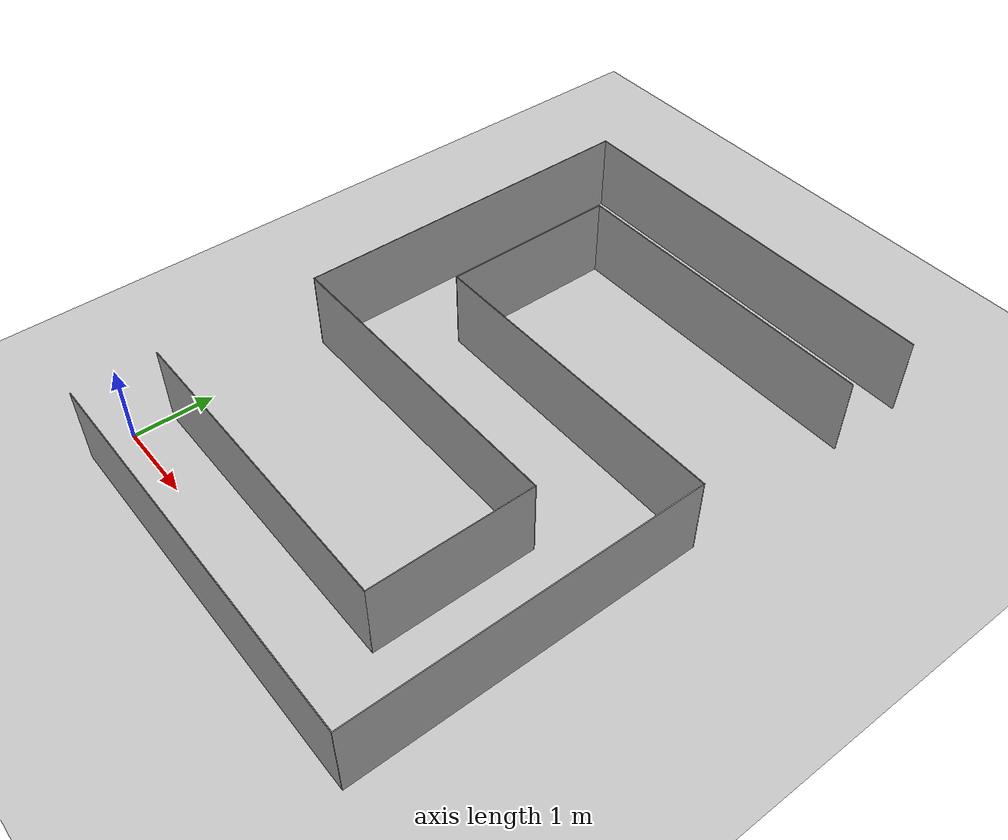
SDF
<sdf version="1.7">
 <world name="default">
  <light name="sun" type="directional">
   <pose>0 0 10 0 -0 0</pose>
   <diffuse>0.8 0.8 0.8 1</diffuse>
   <specular>0.2 0.2 0.2 1</specular>
   <attenuation>
    <range>1000</range>
    <constant>0.9</constant>
    <linear>0.01</linear>
    <quadratic>0.001</quadratic>
   </attenuation>
   <direction>-0.5 0.1 -0.9</direction>
   <spot><inner_angle>0</inner_angle><outer_angle>0</outer_angle><falloff>0</falloff></spot>
  </light>
  <model name="ground_plane">
   <static>1</static>
   <link name="link">
    <collision name="collision">
     <geometry><plane><normal>0 0 1</normal><size>100 100</size></plane></geometry>
     <surface><friction><ode><mu>100</mu><mu2>50</mu2></ode></friction></surface>
    </collision>
    <visual name="visual">
     <cast_shadows>0</cast_shadows>
     <geometry><plane><normal>0 0 1</normal><size>100 100</size></plane></geometry>
     <material>
      <script><uri>file://media/materials/scripts/gazebo.material</uri><name>Gazebo/Grey</name></script>
     </material>
    </visual>
   </link>
  </model>
  <gravity>0 0 -9.8</gravity>
  <magnetic_field>6e-06 2.3e-05 -4.2e-05</magnetic_field>
  <atmosphere type="adiabatic"/>
  <physics type="ode">
   <max_step_size>0.001</max_step_size>
   <real_time_factor>1</real_time_factor>
   <real_time_update_rate>1000</real_time_update_rate>
  </physics>
  <scene><ambient>0.4 0.4 0.4 1</ambient><background>0.7 0.7 0.7 1</background><shadows>1</shadows></scene>
  <audio><device>default</device></audio>
  <spherical_coordinates>
   <surface_model>EARTH_WGS84</surface_model>
   <latitude_deg>0</latitude_deg>
   <longitude_deg>0</longitude_deg>
   <elevation>0</elevation>
   <heading_deg>0</heading_deg>
  </spherical_coordinates>
  <model name="Untitled12345">
   <pose>2.5 3.25 0 0 -0 0</pose>
   <link name="Wall_0">
    <collision name="Wall_0_Collision">
     <geometry><box><size>5.01 0.01 1</size></box></geometry>
     <pose>0 0 0.5 0 -0 0</pose>
    </collision>
    <visual name="Wall_0_Visual">
     <pose>0 0 0.5 0 -0 0</pose>
     <geometry><box><size>5.01 0.01 1</size></box></geometry>
     <material>
      <script><uri>file://media/materials/scripts/gazebo.material</uri><name>Gazebo/Grey</name></script>
      <ambient>1 1 1 1</ambient>
     </material>
     <meta><layer>0</layer></meta>
    </visual>
    <pose>0 -3.75 0 0 -0 0</pose>
   </link>
   <link name="Wall_11">
    <collision name="Wall_11_Collision">
     <geometry><box><size>4.01 0.01 1</size></box></geometry>
     <pose>0 0 0.5 0 -0 0</pose>
    </collision>
    <visual name="Wall_11_Visual">
     <pose>0 0 0.5 0 -0 0</pose>
     <geometry><box><size>4.01 0.01 1</size></box></geometry>
     <material>
      <script><uri>file://media/materials/scripts/gazebo.material</uri><name>Gazebo/Grey</name></script>
      <ambient>1 1 1 1</ambient>
     </material>
     <meta><layer>0</layer></meta>
    </visual>
    <pose>0.5 0.55 0 0 -0 3.14159</pose>
   </link>
   <link name="Wall_13">
    <collision name="Wall_13_Collision">
     <geometry><box><size>4.51 0.01 1</size></box></geometry>
     <pose>0 0 0.5 0 -0 0</pose>
    </collision>
    <visual name="Wall_13_Visual">
     <pose>0 0 0.5 0 -0 0</pose>
     <geometry><box><size>4.51 0.01 1</size></box></geometry>
     <material>
      <script><uri>file://media/materials/scripts/gazebo.material</uri><name>Gazebo/Grey</name></script>
      <ambient>1 1 1 1</ambient>
     </material>
     <meta><layer>0</layer></meta>
    </visual>
    <pose>-2.5 1.5 0 0 -0 1.5708</pose>
   </link>
   <link name="Wall_17">
    <collision name="Wall_17_Collision">
     <geometry><box><size>2.21 0.01 1</size></box></geometry>
     <pose>0 0 0.5 0 -0 0</pose>
    </collision>
    <visual name="Wall_17_Visual">
     <pose>0 0 0.5 0 -0 0</pose>
     <geometry><box><size>2.21 0.01 1</size></box></geometry>
     <material>
      <script><uri>file://media/materials/scripts/gazebo.material</uri><name>Gazebo/Grey</name></script>
      <ambient>1 1 1 1</ambient>
     </material>
     <meta><layer>0</layer></meta>
    </visual>
    <pose>-1.5 1.65 0 0 -0 1.5708</pose>
   </link>
   <link name="Wall_19">
    <collision name="Wall_19_Collision">
     <geometry><box><size>4.01 0.01 1</size></box></geometry>
     <pose>0 0 0.5 0 -0 0</pose>
    </collision>
    <visual name="Wall_19_Visual">
     <pose>0 0 0.5 0 -0 0</pose>
     <geometry><box><size>4.01 0.01 1</size></box></geometry>
     <material>
      <script><uri>file://media/materials/scripts/gazebo.material</uri><name>Gazebo/Grey</name></script>
      <ambient>1 1 1 1</ambient>
     </material>
     <meta><layer>0</layer></meta>
    </visual>
    <pose>0.5 2.75 0 0 -0 0</pose>
   </link>
   <link name="Wall_2">
    <collision name="Wall_2_Collision">
     <geometry><box><size>4.01 0.01 1</size></box></geometry>
     <pose>0 0 0.5 0 -0 0</pose>
    </collision>
    <visual name="Wall_2_Visual">
     <pose>0 0 0.5 0 -0 0</pose>
     <geometry><box><size>4.01 0.01 1</size></box></geometry>
     <material>
      <script><uri>file://media/materials/scripts/gazebo.material</uri><name>Gazebo/Grey</name></script>
      <ambient>1 1 1 1</ambient>
     </material>
     <meta><layer>0</layer></meta>
    </visual>
    <pose>-0.5 -2.75 0 0 -0 0</pose>
   </link>
   <link name="Wall_21">
    <collision name="Wall_21_Collision">
     <geometry><box><size>5.01 0.01 1</size></box></geometry>
     <pose>0 0 0.5 0 -0 0</pose>
    </collision>
    <visual name="Wall_21_Visual">
     <pose>0 0 0.5 0 -0 0</pose>
     <geometry><box><size>5.01 0.01 1</size></box></geometry>
     <material>
      <script><uri>file://media/materials/scripts/gazebo.material</uri><name>Gazebo/Grey</name></script>
      <ambient>1 1 1 1</ambient>
     </material>
     <meta><layer>0</layer></meta>
    </visual>
    <pose>0 3.75 0 0 -0 0</pose>
   </link>
   <link name="Wall_4">
    <collision name="Wall_4_Collision">
     <geometry><box><size>2.01 0.01 1</size></box></geometry>
     <pose>0 0 0.5 0 -0 0</pose>
    </collision>
    <visual name="Wall_4_Visual">
     <pose>0 0 0.5 0 -0 0</pose>
     <geometry><box><size>2.01 0.01 1</size></box></geometry>
     <material>
      <script><uri>file://media/materials/scripts/gazebo.material</uri><name>Gazebo/Grey</name></script>
      <ambient>1 1 1 1</ambient>
     </material>
     <meta><layer>0</layer></meta>
    </visual>
    <pose>1.5 -1.75 0 0 -0 1.5708</pose>
   </link>
   <link name="Wall_7">
    <collision name="Wall_7_Collision">
     <geometry><box><size>4.31 0.01 1</size></box></geometry>
     <pose>0 0 0.5 0 -0 0</pose>
    </collision>
    <visual name="Wall_7_Visual">
     <pose>0 0 0.5 0 -0 0</pose>
     <geometry><box><size>4.31 0.01 1</size></box></geometry>
     <material>
      <script><uri>file://media/materials/scripts/gazebo.material</uri><name>Gazebo/Grey</name></script>
      <ambient>1 1 1 1</ambient>
     </material>
     <meta><layer>0</layer></meta>
    </visual>
    <pose>2.5 -1.6 0 0 -0 1.5708</pose>
   </link>
   <link name="Wall_9">
    <collision name="Wall_9_Collision">
     <geometry><box><size>4.01 0.01 1</size></box></geometry>
     <pose>0 0 0.5 0 -0 0</pose>
    </collision>
    <visual name="Wall_9_Visual">
     <pose>0 0 0.5 0 -0 0</pose>
     <geometry><box><size>4.01 0.01 1</size></box></geometry>
     <material>
      <script><uri>file://media/materials/scripts/gazebo.material</uri><name>Gazebo/Grey</name></script>
      <ambient>1 1 1 1</ambient>
     </material>
     <meta><layer>0</layer></meta>
    </visual>
    <pose>-0.5 -0.75 0 0 -0 3.14159</pose>
   </link>
   <static>1</static>
  </model>
 </world>
</sdf>
